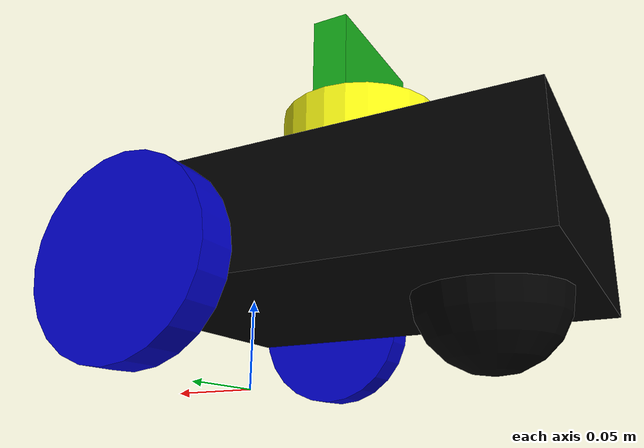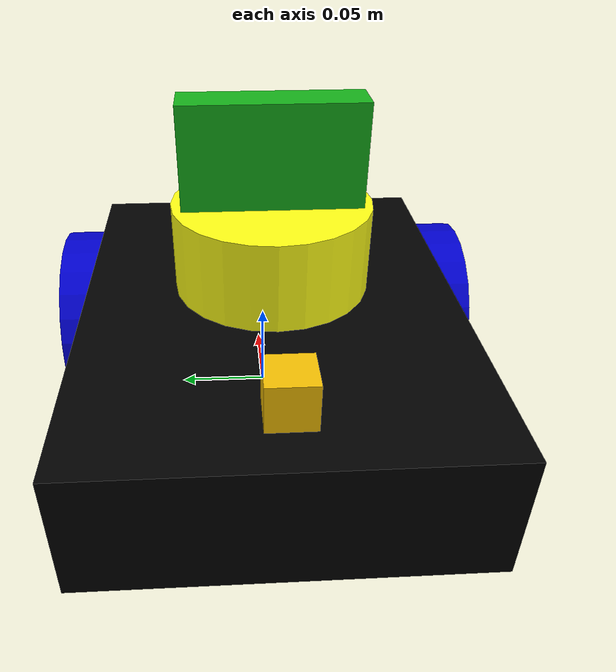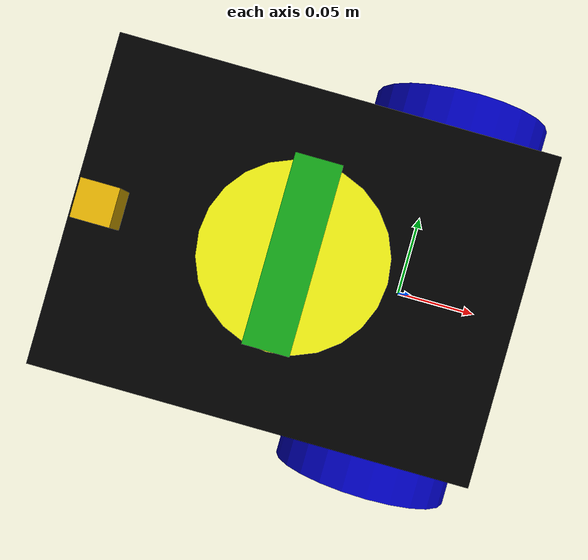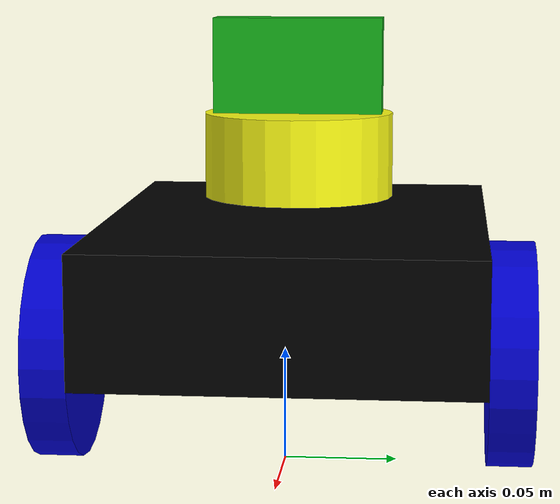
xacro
<?xml version="1.0"?>
<robot name="wheel_robot" xmlns:xacro="http://ros.org/wiki/xacro">
  <!-- MODELS -->
  <xacro:include filename="$(find joy_ps3_gazebo)/meshes/sensor/hokuyo.urdf.xacro"/>
  <xacro:include filename="$(find joy_ps3_gazebo)/meshes/camera/camera.urdf.xacro"/>
  <xacro:include filename="$(find joy_ps3_gazebo)/meshes/imu.urdf.xacro"/>
  <material name="blue">
    <color rgba="0 0 0.8 1"/>
  </material>
  <material name="black">
    <color rgba="0 0 0 1"/>
  </material>
  <material name="white">
    <color rgba="1 1 1 1"/>
  </material>
  <xacro:property name="bodylen" value="0.1" />
  <xacro:macro name="default_inertial" params="mass">
    <inertial>
      <mass value="${mass}" />
      <inertia ixx="1.0" ixy="0.0" ixz="0.0" iyy="1.0" iyz="0.0" izz="1.0" />
    </inertial>
  </xacro:macro>

  <xacro:macro name="wheel_macro" params="parent prefix xyz">
    <joint name="${prefix}_joint" type="continuous">
      <origin xyz="${xyz}" rpy="${radians(-90)} 0 0"/>
      <parent link="${parent}"/>
      <child  link="${prefix}_link"/>
      <axis xyz="0 0 1" />
    </joint>
    <transmission name="${prefix}_trans" type="SimpleTransmission">
      <type>transmission_interface/SimpleTransmission</type>
      <actuator name="${prefix}_motor">
        <mechanicalReduction>1</mechanicalReduction>
      </actuator>
      <joint name="${prefix}_joint">
        <hardwareInterface>hardware_interface/VelocityJointInterface</hardwareInterface>
      </joint>
    </transmission>
    <link name="${prefix}_link">
      <inertial>
        <origin xyz="0 0 0" rpy="0 0 0"/>
        <mass value="0.1"/>
        <inertia ixx="0.0001" ixy="0.0" ixz="0.0" iyy="0.0001" iyz="0.0" izz="0.0001"/>
      </inertial>
      <visual>
        <geometry>
          <cylinder radius="0.05" length="0.02" />
        </geometry>
        <material name="blue"/>
      </visual>
      <collision>
        <geometry>
          <cylinder radius="0.05" length="0.02" />
        </geometry>
      </collision>
    </link>
    <gazebo reference="${prefix}_link">
      <material>Gazebo/Blue</material>
      <mu1 value="2.5" />
      <mu2 value="2.5" />
      <kp value="50000" />
      <kd value="10" />
    </gazebo>
  </xacro:macro>

  <link name="base_link"/>

  <joint name="body_joint" type="fixed">
    <parent link="base_link"/>
    <child  link="body_link"/>
    <origin xyz="-0.07 0 0.07" rpy="0 0 0"/>
  </joint>
  <link name="body_link">
    <inertial>
      <origin xyz="0 0 0" rpy="0 0 0"/>
      <mass value="1.0"/>
      <inertia ixx="0.001" ixy="0.0" ixz="0.0" iyy="0.001" iyz="0.0" izz="0.001"/>
    </inertial>
    <visual>
      <origin xyz="0 0 0" rpy="0 0 0" />
      <geometry>
        <box size="0.24 0.18 0.06" />
      </geometry>
      <material name="black"/>
    </visual>
    <collision>
      <origin xyz="0 0 0" rpy="0 0 0" />
      <geometry>
        <box size="0.24 0.178 0.06" />
      </geometry>
    </collision>
  </link>
  <gazebo reference="body_link">
	  <material>Gazebo/Black</material>
  </gazebo>

  <xacro:wheel_macro prefix="left_wheel"  parent="base_link" xyz="0 0.1 0.05"/>
  <xacro:wheel_macro prefix="right_wheel" parent="base_link" xyz="0 -0.1 0.05"/>

  <joint name="ball_joint" type="fixed">
    <parent link="base_link"/>
    <child  link="ball_link"/>
    <origin xyz="-0.14 0 0.04" rpy="0 0 0"/>
  </joint>
  <link name="ball_link">
    <visual>
      <origin xyz="0 0 0" rpy="0 0 0" />
      <geometry>
        <sphere radius="0.04" />
      </geometry>
      <material name="black"/>
    </visual>
    <collision>
      <origin xyz="0 0 0" rpy="0 0 0" />
      <geometry>
        <sphere radius="0.04" />
      </geometry>
      <material name="black"/>
    </collision>
  </link>
  <gazebo reference="ball_link">
    <material>Gazebo/Black</material>
    <mu1 value="0.5" />
    <mu2 value="0.5" />
  </gazebo>

  <!-- Laser link and plugin -->
  <xacro:hokuyo_laser xyz="0 0 ${0.04 + 0.02}"
	  rpy="0 0 0"
	  parent="body_link" length="0.04" radius="0.045">
  </xacro:hokuyo_laser>

  <!--Imu link and plugin-->
  <xacro:imu_sensor xyz="-0.1 0 ${0.04 + 0.01}"
	  rpy="0 0 0"
          parent="body_link">
  </xacro:imu_sensor>

  <!--Camera link and plugin-->
  <xacro:camera_sensor xyz="0 0 ${0.04 + 0.02 + 0.04}"
	  rpy="0 0 0"
          parent="body_link">
  </xacro:camera_sensor>

  <!-- plugin to connect with gazebo  -->
  <gazebo>
    <plugin name="gazebo_ros_control" filename="libgazebo_ros_control.so">
      <robotNamespace>/wheel_robot</robotNamespace>
      <robotSimType>gazebo_ros_control/DefaultRobotHWSim</robotSimType>
      <legacyModeNS>true</legacyModeNS>
    </plugin>
  </gazebo>

  <!-- gazebo plugin for Wheel Odometry such as nav_msgs, tf -->
  <gazebo>
    <plugin name="ground_truth" filename="libgazebo_ros_p3d.so">
      <frameName>world</frameName>
      <bodyName>base_link</bodyName>
      <topicName>/tracker</topicName>
      <updateRate>10.0</updateRate>
    </plugin>
  </gazebo>
</robot>

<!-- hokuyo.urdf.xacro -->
<robot xmlns:xacro="http://www.ros.org/wiki/xacro" name="hokuyo">
<material name="yellow" >
    <color rgba="1.0 1.0 0.0784313725490196 1.0" />
</material>
<xacro:macro name="hokuyo_laser" params="xyz rpy parent length radius">

    <joint name="hokuyo_laser_joint" type="fixed">
        <axis xyz="0 0 1" />
        <origin xyz="${xyz}" rpy="${rpy}"/>
        <parent link="${parent}"/>
        <child link="hokuyo_laser_link"/>
    </joint>

    <link name="hokuyo_laser_link">
        <collision>
            <origin xyz="0 0 0" rpy="0 0 0"/>
            <geometry>
		    <cylinder length="${length}" radius="${radius}"/>
	    </geometry>
        </collision>
        <visual>
            <origin xyz="0 0 0" rpy="0 0 0"/>
            <geometry>
                <cylinder length="${length}" radius="${radius}"/>
	    </geometry>
	    <material name="yellow"/>
        </visual>
        <inertial>
            <mass value="1e-5" />
            <origin xyz="0 0 0" rpy="0 0 0"/>
            <inertia ixx="1e-6" ixy="0" ixz="0" iyy="1e-6" iyz="0" izz="1e-6" />
        </inertial>
    </link>
    <gazebo reference="hokuyo_laser_link">
        <material>Gazebo/Yellow</material>
    </gazebo>
    <gazebo reference="hokuyo_laser_link">
        <gravity>true</gravity>
        <sensor type="ray" name="head_hokuyo_sensor">
            <pose>0 0 0 0 0 0</pose>
            <visualize>true</visualize>
            <update_rate>40</update_rate>
            <ray>
                <scan>
                    <horizontal>
                        <samples>360</samples>
                        <resolution>1</resolution>
                        <min_angle>-3.14159</min_angle>
                        <max_angle>3.14159</max_angle>
                    </horizontal>
                </scan>
                <range>
                    <min>0.2</min>
                    <max>40</max>
                    <resolution>0.025</resolution>
                </range>
                <noise>
                    <type>gaussian</type>
                    <mean>0.0</mean>
                    <stddev>0.0</stddev>
                </noise>
            </ray>
            <plugin name="gazebo_ros_head_hokuyo_controller" filename="libgazebo_ros_laser.so">
                <robotNamespace></robotNamespace>
                <topicName>laser_scan</topicName>
                <frameName>hokuyo_laser_link</frameName>
            </plugin>
        </sensor>
    </gazebo>

</xacro:macro>

</robot>

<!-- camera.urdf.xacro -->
<robot xmlns:xacro="http://www.ros.org/wiki/xacro" name="camera">
    <material name="green" >
        <color rgba="0.08235294117647059 0.6901960784313725 0.10196078431372549 1.0" />
    </material>
    <xacro:property name="pi" value="3.1415926535897931"/>

    <xacro:macro name="camera_sensor" params="xyz rpy parent">
        <joint name="camera_sensor_joint" type="fixed">
            <axis xyz="0 1 0" />
            <origin xyz="${xyz}" rpy="${rpy}"/>
            <parent link="${parent}"/>
            <child link="camera_link"/>
        </joint>

        <link name="camera_link">
            <collision>
                <origin xyz="0 0 0" rpy="0 0 0"/>
                <geometry>
                    <box size="0.02 0.08 0.05"/>
	        </geometry>
            </collision>
            <visual>
                <origin xyz="0 0 0" rpy="0 0 0"/>
                <geometry>
                    <box size="0.02 0.08 0.05"/>
	        </geometry>
		<material name="green"/>
            </visual>
            <inertial>
                <mass value="0.0001" />
                <origin xyz="0 0 0" rpy="0 0 ${pi}"/>
                <inertia ixx="0.0000001" ixy="0" ixz="0" iyy="0.0000001" iyz="0" izz="0.0000001" />
            </inertial>
        </link>
        <gazebo reference="camera">
            <material>Gazebo/Green</material>
        </gazebo>
	<gazebo reference="camera_link">
	    <sensor type="camera" name="camera">
                <update_rate>30.0</update_rate>
                <camera name="head">
                    <horizontal_fov>1.3962634</horizontal_fov>
                    <image>
                        <width>800</width>
                        <height>600</height>
                        <format>R8G8B8</format>
                    </image>
                    <clip>
                        <near>0.02</near>
                        <far>300</far>
                    </clip>
                    <noise>
                        <type>gaussian</type>
                        <mean>0.0</mean>
                        <stddev>0.007</stddev>
                    </noise>
                </camera>
                <plugin name="camera_controller" filename="libgazebo_ros_camera.so">
                    <alwaysOn>true</alwaysOn>
                    <updateRate>0.0</updateRate>
                    <cameraName>Gazebo/camera</cameraName>
                    <imageTopicName>image_raw</imageTopicName>
                    <cameraInfoTopicName>camera_info</cameraInfoTopicName>
                    <frameName>camera_link</frameName>
                    <hackBaseline>0.07</hackBaseline>
                    <distortionK1>0.0</distortionK1>
                    <distortionK2>0.0</distortionK2>
                    <distortionK3>0.0</distortionK3>
                    <distortionT1>0.0</distortionT1>
                    <distortionT2>0.0</distortionT2>
                </plugin>
            </sensor>
    </gazebo>

    </xacro:macro>

</robot>

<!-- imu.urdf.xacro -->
<robot xmlns:xacro="http://www.ros.org/wiki/xacro" name="imu">
<material name="golden" >
    <color rgba="0.9607843137254902 0.7490196078431373 0.011764705882352941 1.0" />
</material>
<xacro:macro name="imu_sensor" params="xyz rpy parent">
    <joint name="imu_sensor_joint" type="fixed">
        <axis xyz="0 0 1" />
        <origin xyz="${xyz}" rpy="${rpy}"/>
        <parent link="${parent}"/>
        <child link="imu_sensor_link"/>
    </joint>

    <link name="imu_sensor_link">
        <collision>
            <origin xyz="0 0 0" rpy="0 0 0"/>
            <geometry>
                <box size="0.02 0.02 0.02"/>
            </geometry>
        </collision>
        <visual>
            <origin xyz="0 0 0" rpy="0 0 0"/>
            <geometry>
                <box size="0.02 0.02 0.02"/>
            </geometry>
            <material name="golden"/>
        </visual>
        <inertial>
            <mass value="0.001" />
            <origin xyz="0 0 0" rpy="0 0 0"/>
            <inertia ixx="0.00000015" ixy="0" ixz="0" iyy="0.00000015" iyz="0" izz="0.00000015" />
        </inertial>
    </link>
    <gazebo reference="imu_sensor">
        <material>Gazebo/Golden</material>
    </gazebo>
    <gazebo reference="imu_sensor_link">
	<gravity>true</gravity>
        <sensor name='imu_sensor' type='imu'>
            <always_on>1</always_on>
            <update_rate>1000</update_rate>
            <visualize>1</visualize>
            <topic>__default_topic__</topic>
            <plugin name='imu_plugin' filename='libgazebo_ros_imu_sensor.so'>
                <topicName>imu_data</topicName>
                <bodyName>imu_sensor_link</bodyName>
                <updateRateHZ>10.0</updateRateHZ>
                <gaussianNoise>0.0</gaussianNoise>
                <xyzOffset>0 0 0</xyzOffset>
                <rpyOffset>0 0 0</rpyOffset>
            </plugin>
            <pose>0 0 0 0 0 0</pose>
        </sensor>
    </gazebo>

</xacro:macro>

</robot>
